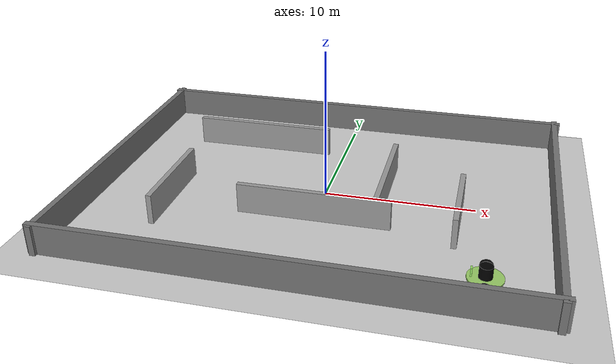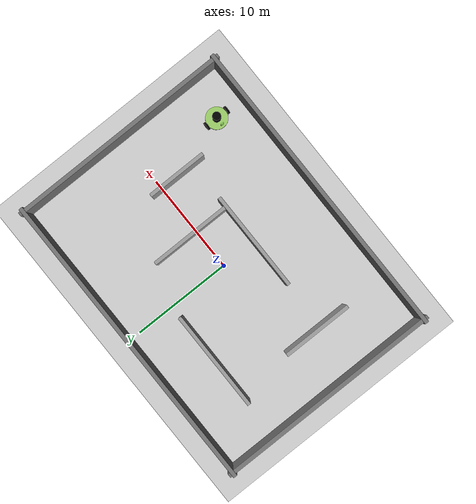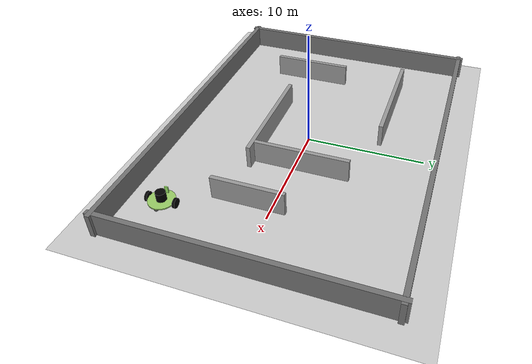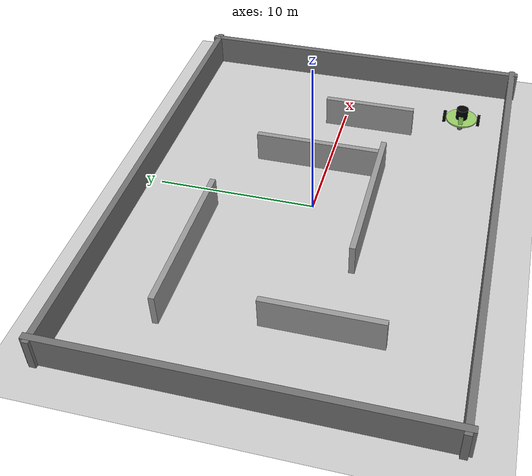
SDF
<?xml version="1.0" ?>
<sdf version="1.8">
    <world name="car_world">
        <physics name="1ms" type="ignored">
            <max_step_size>0.001</max_step_size>
            <real_time_factor>1.0</real_time_factor>
        </physics>

        <plugin
            filename="gz-sim-physics-system"
            name="gz::sim::systems::Physics">
        </plugin>

        <plugin
            filename="gz-sim-user-commands-system"
            name="gz::sim::systems::UserCommands">
        </plugin>

        <plugin
            filename="gz-sim-scene-broadcaster-system"
            name="gz::sim::systems::SceneBroadcaster">
        </plugin>

        <plugin
            filename="gz-sim-sensors-system"
            name="gz::sim::systems::Sensors">
            <render_engine>ogre2</render_engine>
        </plugin>

        <light type="directional" name="sun">
            <cast_shadows>true</cast_shadows>
            <pose>0 0 10 0 0 0</pose>
            <diffuse>0.8 0.8 0.8 1</diffuse>
            <specular>0.2 0.2 0.2 1</specular>
            <attenuation>
                <range>1000</range>
                <constant>0.9</constant>
                <linear>0.01</linear>
                <quadratic>0.001</quadratic>
            </attenuation>
            <direction>-0.5 0.1 -0.9</direction>
        </light>

        <!-- PODLOGA -->
        <model name="ground_plane">
            <static>true</static>
            <link name="link">
                <collision name="collision">
                    <geometry>
                        <plane>
                            <normal>0 0 1</normal>
                        </plane>
                    </geometry>
                </collision>

                <visual name="visual">
                    <geometry>
                        <plane>
                            <normal>0 0 1</normal>
                            <size>36 28</size>
                        </plane>
                    </geometry>
                    <material>
                        <ambient>0.8 0.8 0.8 1</ambient>
                        <diffuse>0.8 0.8 0.8 1</diffuse>
                        <specular>0.8 0.8 0.8 1</specular>
                    </material>
                </visual>
            </link>
        </model>

        <!-- DUZY SWIAT DO SLAM/A* -->
        <!-- Zamkniety pokoj 30 m x 22 m -->
        <!-- Sciany zewnetrzne bez przerw -->

        <!-- Gorna sciana zewnetrzna -->
        <model name="wall_north">
            <static>true</static>
            <pose>0 11 1.0 0 0 0</pose>
            <link name="link">
                <collision name="collision">
                    <geometry>
                        <box>
                            <size>30.8 0.4 2.0</size>
                        </box>
                    </geometry>
                </collision>
                <visual name="visual">
                    <geometry>
                        <box>
                            <size>30.8 0.4 2.0</size>
                        </box>
                    </geometry>
                    <material>
                        <ambient>0.45 0.45 0.45 1</ambient>
                        <diffuse>0.45 0.45 0.45 1</diffuse>
                    </material>
                </visual>
            </link>
        </model>

        <!-- Dolna sciana zewnetrzna -->
        <model name="wall_south">
            <static>true</static>
            <pose>0 -11 1.0 0 0 0</pose>
            <link name="link">
                <collision name="collision">
                    <geometry>
                        <box>
                            <size>30.8 0.4 2.0</size>
                        </box>
                    </geometry>
                </collision>
                <visual name="visual">
                    <geometry>
                        <box>
                            <size>30.8 0.4 2.0</size>
                        </box>
                    </geometry>
                    <material>
                        <ambient>0.45 0.45 0.45 1</ambient>
                        <diffuse>0.45 0.45 0.45 1</diffuse>
                    </material>
                </visual>
            </link>
        </model>

        <!-- Prawa sciana zewnetrzna -->
        <model name="wall_east">
            <static>true</static>
            <pose>15 0 1.0 0 0 0</pose>
            <link name="link">
                <collision name="collision">
                    <geometry>
                        <box>
                            <size>0.4 22.8 2.0</size>
                        </box>
                    </geometry>
                </collision>
                <visual name="visual">
                    <geometry>
                        <box>
                            <size>0.4 22.8 2.0</size>
                        </box>
                    </geometry>
                    <material>
                        <ambient>0.45 0.45 0.45 1</ambient>
                        <diffuse>0.45 0.45 0.45 1</diffuse>
                    </material>
                </visual>
            </link>
        </model>

        <!-- Lewa sciana zewnetrzna -->
        <model name="wall_west">
            <static>true</static>
            <pose>-15 0 1.0 0 0 0</pose>
            <link name="link">
                <collision name="collision">
                    <geometry>
                        <box>
                            <size>0.4 22.8 2.0</size>
                        </box>
                    </geometry>
                </collision>
                <visual name="visual">
                    <geometry>
                        <box>
                            <size>0.4 22.8 2.0</size>
                        </box>
                    </geometry>
                    <material>
                        <ambient>0.45 0.45 0.45 1</ambient>
                        <diffuse>0.45 0.45 0.45 1</diffuse>
                    </material>
                </visual>
            </link>
        </model>

        <!-- WEWNETRZNE SCIANY -->
        <!-- Kazda sciana jest ciaglym elementem -->
        <!-- Przejazdy wynikaja z odstepow miedzy scianami -->
        <!-- Odstepy sa szerokie -->

        <!-- Sciana 1: lewa gorna pozioma -->
        <model name="inner_wall_1">
            <static>true</static>
            <pose>-6.15 6.0 1.0 0 0 0</pose>
            <link name="link">
                <collision name="collision">
                    <geometry>
                        <box>
                            <size>10.0 0.35 2.0</size>
                        </box>
                    </geometry>
                </collision>
                <visual name="visual">
                    <geometry>
                        <box>
                            <size>10.0 0.35 2.0</size>
                        </box>
                    </geometry>
                    <material>
                        <ambient>0.6 0.6 0.6 1</ambient>
                        <diffuse>0.6 0.6 0.6 1</diffuse>
                    </material>
                </visual>
            </link>
        </model>

        <!-- Sciana 2: prawa gorna pionowa -->
        <model name="inner_wall_2">
            <static>true</static>
            <pose>4.0 0.68 1.0 0 0 0</pose>
            <link name="link">
                <collision name="collision">
                    <geometry>
                        <box>
                            <size>0.35 8.0 2.0</size>
                        </box>
                    </geometry>
                </collision>
                <visual name="visual">
                    <geometry>
                        <box>
                            <size>0.35 8.0 2.0</size>
                        </box>
                    </geometry>
                    <material>
                        <ambient>0.6 0.6 0.6 1</ambient>
                        <diffuse>0.6 0.6 0.6 1</diffuse>
                    </material>
                </visual>
            </link>
        </model>

        <!-- Sciana 3: centralna pozioma -->
        <model name="inner_wall_3">
            <static>true</static>
            <pose>0.0 -3.5 1.0 0 0 0</pose>
            <link name="link">
                <collision name="collision">
                    <geometry>
                        <box>
                            <size>10.0 0.35 2.0</size>
                        </box>
                    </geometry>
                </collision>
                <visual name="visual">
                    <geometry>
                        <box>
                            <size>10.0 0.35 2.0</size>
                        </box>
                    </geometry>
                    <material>
                        <ambient>0.6 0.6 0.6 1</ambient>
                        <diffuse>0.6 0.6 0.6 1</diffuse>
                    </material>
                </visual>
            </link>
        </model>

        <!-- Sciana 4: lewa dolna pionowa -->
        <model name="inner_wall_4">
            <static>true</static>
            <pose>-9.81 -2.89 1.0 0 0 0</pose>
            <link name="link">
                <collision name="collision">
                    <geometry>
                        <box>
                            <size>0.35 7.0 2.0</size>
                        </box>
                    </geometry>
                </collision>
                <visual name="visual">
                    <geometry>
                        <box>
                            <size>0.35 7.0 2.0</size>
                        </box>
                    </geometry>
                    <material>
                        <ambient>0.6 0.6 0.6 1</ambient>
                        <diffuse>0.6 0.6 0.6 1</diffuse>
                    </material>
                </visual>
            </link>
        </model>

        <!-- Sciana 5: prawa dolna pionowa -->
        <model name="inner_wall_5">
            <static>true</static>
            <pose>9.0 -1.81 1.0 0 0 0</pose>
            <link name="link">
                <collision name="collision">
                    <geometry>
                        <box>
                            <size>0.35 6.0 2.0</size>
                        </box>
                    </geometry>
                </collision>
                <visual name="visual">
                    <geometry>
                        <box>
                            <size>0.35 6.0 2.0</size>
                        </box>
                    </geometry>
                    <material>
                        <ambient>0.6 0.6 0.6 1</ambient>
                        <diffuse>0.6 0.6 0.6 1</diffuse>
                    </material>
                </visual>
            </link>
        </model>

        <!-- ROBOT JETBOT -->
        <model name='jetbot' canonical_link='chassis'>
            <pose relative_to='world'>11 -8 0 0 0 3.14159</pose>

            <!-- sensor frames -->
            <frame name="lidar_frame" attached_to='chassis'>
                <pose>0.0 0.0 1.0 0 0 0</pose>
            </frame>

            <frame name="camera_frame" attached_to='chassis'>
                <pose>0.0 0.0 1.0 0 0 0</pose>
            </frame>

            <!-- chassis -->
            <link name='chassis'>
                <pose relative_to='__model__'>0.0 0 0.45 0 0 0</pose>
                <inertial>
                    <mass>1.14395</mass>
                    <inertia>
                        <ixx>0.095329</ixx>
                        <ixy>0</ixy>
                        <ixz>0</ixz>
                        <iyy>0.381317</iyy>
                        <iyz>0</iyz>
                        <izz>0.476646</izz>
                    </inertia>
                </inertial>

                <visual name='visual'>
                    <geometry>
                        <cylinder>
                            <radius>1.07</radius>
                            <length>0.1</length>
                        </cylinder>
                    </geometry>
                    <material>
                        <ambient>0.6 0.8 0.4 1</ambient>
                        <diffuse>0.6 0.8 0.4 1</diffuse>
                        <specular>0.6 0.8 0.4 1</specular>
                    </material>
                </visual>

                <collision name='collision'>
                    <geometry>
                        <cylinder>
                            <radius>0.107</radius>
                            <length>0.01</length>
                        </cylinder>
                    </geometry>
                </collision>
            </link>

            <!-- LIDAR -->
            <link name='lidar'>
                <pose relative_to='chassis'>0.0 0 0.4 0 0 0</pose>
                <inertial>
                    <mass>1.14395</mass>
                    <inertia>
                        <ixx>0.095329</ixx>
                        <ixy>0</ixy>
                        <ixz>0</ixz>
                        <iyy>0.381317</iyy>
                        <iyz>0</iyz>
                        <izz>0.476646</izz>
                    </inertia>
                </inertial>

                <visual name='visual'>
                    <geometry>
                        <cylinder>
                            <radius>0.4</radius>
                            <length>0.8</length>
                        </cylinder>
                    </geometry>
                    <material>
                        <ambient>0.0 0.0 0.0 1</ambient>
                        <diffuse>0.0 0.0 0.0 1</diffuse>
                        <specular>0.0 0.0 0.0 1</specular>
                    </material>
                </visual>

                <collision name='collision'>
                    <geometry>
                        <cylinder>
                            <radius>0.4</radius>
                            <length>0.8</length>
                        </cylinder>
                    </geometry>
                </collision>

                <!-- LIDAR sensor -->
                <sensor name='gpu_lidar' type='gpu_lidar'>
                    <pose relative_to='lidar_frame'>0 0 0 0 0 0</pose>
                    <topic>lidar</topic>
                    <update_rate>5</update_rate>

                    <ray>
                        <scan>
                            <horizontal>
                                <samples>720</samples>
                                <resolution>1</resolution>
                                <min_angle>-3.14159</min_angle>
                                <max_angle>3.14159</max_angle>
                            </horizontal>
                            <vertical>
                                <samples>1</samples>
                                <resolution>0.01</resolution>
                                <min_angle>0</min_angle>
                                <max_angle>0</max_angle>
                            </vertical>
                        </scan>

                        <range>
                            <min>0.15</min>
                            <max>12.0</max>
                            <resolution>0.01</resolution>
                        </range>
                    </ray>

                    <always_on>1</always_on>
                    <visualize>true</visualize>
                </sensor>
            </link>

            <!-- CAMERA -->
            <link name='camera'>
                <pose relative_to='chassis'>0.8 0.0 0.3 0 0 0</pose>
                <inertial>
                    <mass>0.1</mass>
                    <inertia>
                        <ixx>0.095329</ixx>
                        <ixy>0</ixy>
                        <ixz>0</ixz>
                        <iyy>0.381317</iyy>
                        <iyz>0</iyz>
                        <izz>0.476646</izz>
                    </inertia>
                </inertial>

                <visual name='visual'>
                    <geometry>
                        <box>
                            <size>0.1 0.3 0.6</size>
                        </box>
                    </geometry>
                    <material>
                        <ambient>0.6 0.9 0.4 1</ambient>
                        <diffuse>0.6 0.9 0.4 1</diffuse>
                        <specular>0.6 0.9 0.4 1</specular>
                    </material>
                </visual>

                <collision name='collision'>
                    <geometry>
                        <cylinder>
                            <radius>0.4</radius>
                            <length>0.8</length>
                        </cylinder>
                    </geometry>
                </collision>

                <sensor name="rgb_camera" type="camera">
                    <pose relative_to='camera_frame'>0 0 0 0 0 0</pose>
                    <always_on>true</always_on>
                    <visualize>true</visualize>
                    <update_rate>5</update_rate>
                    <topic>camera/image_raw</topic>
                    <gz_frame_id>camera_rgb_frame</gz_frame_id>
                    <camera name="intel_realsense_r200">
                        <camera_info_topic>camera/camera_info</camera_info_topic>
                        <horizontal_fov>1.02974</horizontal_fov>
                        <image>
                            <width>320</width>
                            <height>240</height>
                            <format>R8G8B8</format>
                        </image>
                        <clip>
                            <near>0.02</near>
                            <far>300</far>
                        </clip>
                    </camera>
                </sensor>
            </link>

            <!-- LEFT WHEEL -->
            <link name='left_wheel'>
                <pose relative_to="chassis">0.0 1.17 0 -1.5707 0 0</pose>
                <inertial>
                    <mass>1</mass>
                    <inertia>
                        <ixx>0.043333</ixx>
                        <ixy>0</ixy>
                        <ixz>0</ixz>
                        <iyy>0.043333</iyy>
                        <iyz>0</iyz>
                        <izz>0.08</izz>
                    </inertia>
                </inertial>

                <visual name='visual'>
                    <geometry>
                        <cylinder>
                            <radius>0.4</radius>
                            <length>0.2</length>
                        </cylinder>
                    </geometry>
                    <material>
                        <ambient>0.0 0.0 0.0 1</ambient>
                        <diffuse>0.0 0.0 0.0 1</diffuse>
                        <specular>0.0 0.0 0.0 1</specular>
                    </material>
                </visual>

                <collision name='collision'>
                    <geometry>
                        <cylinder>
                            <radius>0.4</radius>
                            <length>0.2</length>
                        </cylinder>
                    </geometry>
                </collision>
            </link>

            <!-- RIGHT WHEEL -->
            <link name='right_wheel'>
                <pose relative_to="chassis">0.0 -1.17 0 -1.5707 0 0</pose>
                <inertial>
                    <mass>1</mass>
                    <inertia>
                        <ixx>0.043333</ixx>
                        <ixy>0</ixy>
                        <ixz>0</ixz>
                        <iyy>0.043333</iyy>
                        <iyz>0</iyz>
                        <izz>0.08</izz>
                    </inertia>
                </inertial>

                <visual name='visual'>
                    <geometry>
                        <cylinder>
                            <radius>0.4</radius>
                            <length>0.2</length>
                        </cylinder>
                    </geometry>
                    <material>
                        <ambient>0.0 0.0 0.0 1</ambient>
                        <diffuse>0.0 0.0 0.0 1</diffuse>
                        <specular>0.0 0.0 0.0 1</specular>
                    </material>
                </visual>

                <collision name='collision'>
                    <geometry>
                        <cylinder>
                            <radius>0.4</radius>
                            <length>0.2</length>
                        </cylinder>
                    </geometry>
                </collision>
            </link>

            <!-- CASTER FRAME FRONT -->
            <frame name="caster_frame0" attached_to='chassis'>
                <pose>0.8 0 -0.2 0 0 0</pose>
            </frame>

            <!-- CASTER WHEEL FRONT -->
            <link name='caster0'>
                <pose relative_to='caster_frame0'/>
                <inertial>
                    <mass>1</mass>
                    <inertia>
                        <ixx>0.016</ixx>
                        <ixy>0</ixy>
                        <ixz>0</ixz>
                        <iyy>0.016</iyy>
                        <iyz>0</iyz>
                        <izz>0.016</izz>
                    </inertia>
                </inertial>

                <visual name='visual'>
                    <geometry>
                        <sphere>
                            <radius>0.2</radius>
                        </sphere>
                    </geometry>
                    <material>
                        <ambient>0.4 0.4 0.4 1</ambient>
                        <diffuse>0.4 0.4 0.4 1</diffuse>
                        <specular>0.4 0.4 0.4 1</specular>
                    </material>
                </visual>

                <collision name='collision'>
                    <geometry>
                        <sphere>
                            <radius>0.2</radius>
                        </sphere>
                    </geometry>
                </collision>
            </link>

            <!-- CASTER FRAME REAR -->
            <frame name="caster_frame1" attached_to='chassis'>
                <pose>-0.8 0 -0.2 0 0 0</pose>
            </frame>

            <!-- CASTER WHEEL REAR -->
            <link name='caster1'>
                <pose relative_to='caster_frame1'/>
                <inertial>
                    <mass>1</mass>
                    <inertia>
                        <ixx>0.016</ixx>
                        <ixy>0</ixy>
                        <ixz>0</ixz>
                        <iyy>0.016</iyy>
                        <iyz>0</iyz>
                        <izz>0.016</izz>
                    </inertia>
                </inertial>

                <visual name='visual'>
                    <geometry>
                        <sphere>
                            <radius>0.2</radius>
                        </sphere>
                    </geometry>
                    <material>
                        <ambient>0.4 0.4 0.4 1</ambient>
                        <diffuse>0.4 0.4 0.4 1</diffuse>
                        <specular>0.4 0.4 0.4 1</specular>
                    </material>
                </visual>

                <collision name='collision'>
                    <geometry>
                        <sphere>
                            <radius>0.2</radius>
                        </sphere>
                    </geometry>
                </collision>
            </link>

            <!-- LEFT WHEEL JOINT -->
            <joint name='left_wheel_joint' type='revolute'>
                <pose relative_to='left_wheel'/>
                <parent>chassis</parent>
                <child>left_wheel</child>
                <axis>
                    <xyz expressed_in='__model__'>0 1 0</xyz>
                    <limit>
                        <lower>-1.79769e+308</lower>
                        <upper>1.79769e+308</upper>
                    </limit>
                </axis>
            </joint>

            <!-- RIGHT WHEEL JOINT -->
            <joint name='right_wheel_joint' type='revolute'>
                <pose relative_to='right_wheel'/>
                <parent>chassis</parent>
                <child>right_wheel</child>
                <axis>
                    <xyz expressed_in='__model__'>0 1 0</xyz>
                    <limit>
                        <lower>-1.79769e+308</lower>
                        <upper>1.79769e+308</upper>
                    </limit>
                </axis>
            </joint>

            <!-- CASTER JOINTS -->
            <joint name='caster_wheel_front' type='ball'>
                <parent>chassis</parent>
                <child>caster0</child>
            </joint>

            <joint name='caster_wheel_rear' type='ball'>
                <parent>chassis</parent>
                <child>caster1</child>
            </joint>

            <!-- LIDAR JOINT -->
            <joint name="lidar_joint" type="fixed">
                <parent>chassis</parent>
                <child>lidar</child>
            </joint>

            <!-- CAMERA JOINT -->
            <joint name="camera_joint" type="fixed">
                <parent>chassis</parent>
                <child>camera</child>
            </joint>

            <!-- CMD_VEL AND ODOMETRY -->
            <plugin
                filename="gz-sim-diff-drive-system"
                name="gz::sim::systems::DiffDrive">
                <left_joint>left_wheel_joint</left_joint>
                <right_joint>right_wheel_joint</right_joint>
                <wheel_separation>2.34</wheel_separation>
                <wheel_radius>0.4</wheel_radius>
                <odom_publish_frequency>20</odom_publish_frequency>
                <topic>cmd_vel</topic>
            </plugin>

        </model>
    </world>
</sdf>
